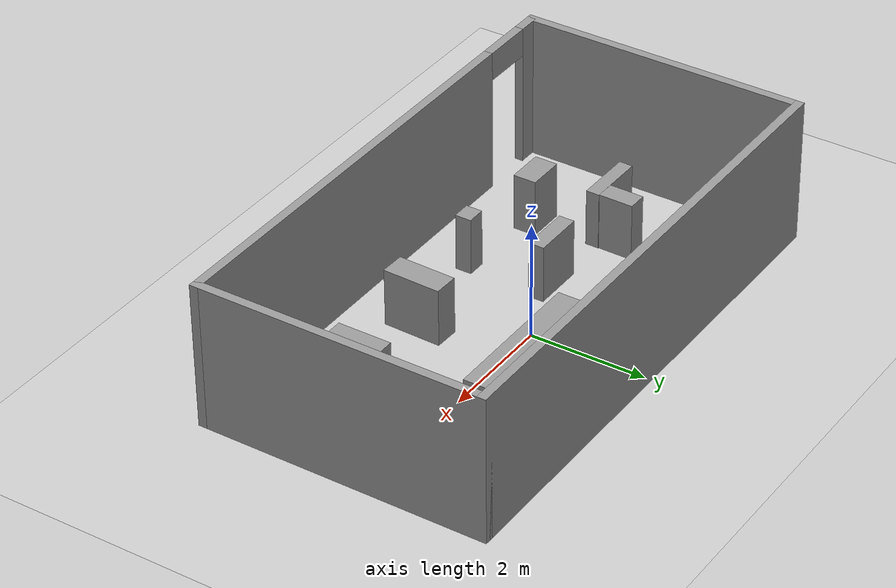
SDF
<sdf version="1.7">
 <world name="default">
  <light name="sun" type="directional">
   <pose>0 0 10 0 -0 0</pose>
   <diffuse>0.8 0.8 0.8 1</diffuse>
   <specular>0.2 0.2 0.2 1</specular>
   <attenuation>
    <range>1000</range>
    <constant>0.9</constant>
    <linear>0.01</linear>
    <quadratic>0.001</quadratic>
   </attenuation>
   <direction>-0.5 0.1 -0.9</direction>
   <spot><inner_angle>0</inner_angle><outer_angle>0</outer_angle><falloff>0</falloff></spot>
  </light>
  <model name="ground_plane">
   <static>1</static>
   <link name="link">
    <collision name="collision">
     <geometry><plane><normal>0 0 1</normal><size>100 100</size></plane></geometry>
     <surface>
      <contact><collide_bitmask>65535</collide_bitmask></contact>
      <friction><ode><mu>100</mu><mu2>50</mu2></ode></friction>
     </surface>
    </collision>
    <visual name="visual">
     <cast_shadows>0</cast_shadows>
     <geometry><plane><normal>0 0 1</normal><size>100 100</size></plane></geometry>
     <material>
      <script><uri>file://media/materials/scripts/gazebo.material</uri><name>Gazebo/Grey</name></script>
     </material>
    </visual>
   </link>
  </model>
  <gravity>0 0 -9.8</gravity>
  <magnetic_field>6e-06 2.3e-05 -4.2e-05</magnetic_field>
  <atmosphere type="adiabatic"/>
  <physics type="ode">
   <max_step_size>0.001</max_step_size>
   <real_time_factor>1</real_time_factor>
   <real_time_update_rate>1000</real_time_update_rate>
  </physics>
  <scene><ambient>0.4 0.4 0.4 1</ambient><background>0.7 0.7 0.7 1</background><shadows>1</shadows></scene>
  <spherical_coordinates>
   <surface_model>EARTH_WGS84</surface_model>
   <latitude_deg>0</latitude_deg>
   <longitude_deg>0</longitude_deg>
   <elevation>0</elevation>
   <heading_deg>0</heading_deg>
  </spherical_coordinates>
  <model name="house_8_13">
   <pose>-0.000757 -0.010216 0 0 -0 0</pose>
   <link name="Wall_0">
    <collision name="Wall_0_Collision">
     <geometry><box><size>9 0.15 2.5</size></box></geometry>
     <pose>0 0 1.25 0 -0 0</pose>
    </collision>
    <visual name="Wall_0_Visual">
     <pose>0 0 1.25 0 -0 0</pose>
     <geometry><box><size>9 0.15 2.5</size></box></geometry>
     <material>
      <script><uri>file://media/materials/scripts/gazebo.material</uri><name>Gazebo/Grey</name></script>
      <ambient>1 1 1 1</ambient>
     </material>
     <meta><layer>0</layer></meta>
    </visual>
    <pose>-0 2.0525 0 0 -0 0</pose>
   </link>
   <link name="Wall_1">
    <collision name="Wall_1_Collision">
     <geometry><box><size>5 0.15 2.5</size></box></geometry>
     <pose>0 0 1.25 0 -0 0</pose>
    </collision>
    <visual name="Wall_1_Visual">
     <pose>0 0 1.25 0 -0 0</pose>
     <geometry><box><size>5 0.15 2.5</size></box></geometry>
     <material>
      <script><uri>file://media/materials/scripts/gazebo.material</uri><name>Gazebo/Grey</name></script>
      <ambient>1 1 1 1</ambient>
     </material>
     <meta><layer>0</layer></meta>
    </visual>
    <pose>4.425 -0.3725 0 0 -0 -1.5708</pose>
   </link>
   <link name="Wall_2">
    <pose>-0 -2.7975 0 0 -0 3.14159</pose>
    <visual name="Wall_2_Visual_0">
     <pose>-0.6775 0 1.25 0 -0 0</pose>
     <geometry><box><size>7.645 0.15 2.5</size></box></geometry>
     <material>
      <script><uri>file://media/materials/scripts/gazebo.material</uri><name>Gazebo/Grey</name></script>
      <ambient>1 1 1 1</ambient>
     </material>
     <meta><layer>0</layer></meta>
    </visual>
    <collision name="Wall_2_Collision_0">
     <geometry><box><size>7.645 0.15 2.5</size></box></geometry>
     <pose>-0.6775 0 1.25 0 -0 0</pose>
    </collision>
    <visual name="Wall_2_Visual_1">
     <pose>4.2725 0 1.25 0 -0 0</pose>
     <geometry><box><size>0.455 0.15 2.5</size></box></geometry>
     <material>
      <script><uri>file://media/materials/scripts/gazebo.material</uri><name>Gazebo/Grey</name></script>
      <ambient>1 1 1 1</ambient>
     </material>
     <meta><layer>0</layer></meta>
    </visual>
    <collision name="Wall_2_Collision_1">
     <geometry><box><size>0.455 0.15 2.5</size></box></geometry>
     <pose>4.2725 0 1.25 0 -0 0</pose>
    </collision>
    <visual name="Wall_2_Visual_2">
     <pose>3.595 0 2.25 0 -0 0</pose>
     <geometry><box><size>0.9 0.15 0.5</size></box></geometry>
     <material>
      <script><uri>file://media/materials/scripts/gazebo.material</uri><name>Gazebo/Grey</name></script>
      <ambient>1 1 1 1</ambient>
     </material>
     <meta><layer>0</layer></meta>
    </visual>
    <collision name="Wall_2_Collision_2">
     <geometry><box><size>0.9 0.15 0.5</size></box></geometry>
     <pose>3.595 0 2.25 0 -0 0</pose>
    </collision>
   </link>
   <link name="Wall_3">
    <collision name="Wall_3_Collision">
     <geometry><box><size>5 0.15 2.5</size></box></geometry>
     <pose>0 0 1.25 0 -0 0</pose>
    </collision>
    <visual name="Wall_3_Visual">
     <pose>0 0 1.25 0 -0 0</pose>
     <geometry><box><size>5 0.15 2.5</size></box></geometry>
     <material>
      <script><uri>file://media/materials/scripts/gazebo.material</uri><name>Gazebo/Grey</name></script>
      <ambient>1 1 1 1</ambient>
     </material>
     <meta><layer>0</layer></meta>
    </visual>
    <pose>-4.425 -0.3725 0 0 -0 1.5708</pose>
   </link>
   <static>1</static>
  </model>
  <model name="unit_box">
   <pose>1.31193 1.20542 0.5 0 -0 9e-06</pose>
   <link name="link">
    <inertial>
     <mass>1</mass>
     <inertia>
      <ixx>0.166667</ixx>
      <ixy>0</ixy>
      <ixz>0</ixz>
      <iyy>0.166667</iyy>
      <iyz>0</iyz>
      <izz>0.166667</izz>
     </inertia>
    </inertial>
    <collision name="collision"><geometry><box><size>2.57913 1.42997 1</size></box></geometry></collision>
    <visual name="visual">
     <geometry><box><size>2.57913 1.42997 1</size></box></geometry>
     <material>
      <script><name>Gazebo/Grey</name><uri>file://media/materials/scripts/gazebo.material</uri></script>
     </material>
    </visual>
   </link>
  </model>
  <model name="mark_label1">
   <link name="link_0">
    <inertial>
     <mass>0.184018</mass>
     <inertia>
      <ixx>0.00908536</ixx>
      <ixy>0</ixy>
      <ixz>0</ixz>
      <iyy>0.011455</iyy>
      <iyz>0</iyz>
      <izz>0.00984742</izz>
     </inertia>
    </inertial>
    <visual name="visual">
     <geometry><box><size>0.048235 0.637018 0.37006</size></box></geometry>
     <material>
      <lighting>1</lighting>
      <script>
       <uri>/home/lynn/catkin_ws/src/home/models/mark_label1/materials/scripts</uri>
       <uri>/home/lynn/catkin_ws/src/home/models/mark_label1/materials/textures</uri>
       <name>Mark/image1</name>
      </script>
      <shader type="pixel"><normal_map>__default__</normal_map></shader>
      <ambient>0.3 0.3 0.3 1</ambient>
      <diffuse>0.7 0.7 0.7 1</diffuse>
      <specular>0.01 0.01 0.01 1</specular>
      <emissive>0 0 0 1</emissive>
     </material>
    </visual>
    <collision name="collision">
     <geometry><box><size>0.048235 0.637018 0.37006</size></box></geometry>
     <surface>
      <friction>
       <ode><mu>1</mu><mu2>1</mu2><fdir1>0 0 0</fdir1><slip1>0</slip1><slip2>0</slip2></ode>
       <torsional>
        <coefficient>1</coefficient>
        <patch_radius>0</patch_radius>
        <surface_radius>0</surface_radius>
        <use_patch_radius>1</use_patch_radius>
        <ode><slip>0</slip></ode>
       </torsional>
      </friction>
      <bounce><restitution_coefficient>0</restitution_coefficient><threshold>1e+06</threshold></bounce>
      <contact>
       <collide_without_contact>0</collide_without_contact>
       <collide_without_contact_bitmask>1</collide_without_contact_bitmask>
       <collide_bitmask>1</collide_bitmask>
       <ode>
        <soft_cfm>0</soft_cfm>
        <soft_erp>0.2</soft_erp>
        <kp>1e+13</kp>
        <kd>1</kd>
        <max_vel>0.01</max_vel>
        <min_depth>0</min_depth>
       </ode>
       <bullet>
        <split_impulse>1</split_impulse>
        <split_impulse_penetration_threshold>-0.01</split_impulse_penetration_threshold>
        <soft_cfm>0</soft_cfm>
        <soft_erp>0.2</soft_erp>
        <kp>1e+13</kp>
        <kd>1</kd>
       </bullet>
      </contact>
     </surface>
    </collision>
   </link>
   <static>0</static>
   <pose>-0.047759 1.23117 0.185029 4e-06 -0 0.007292</pose>
  </model>
  <model name="mark_label2">
   <link name="link_0">
    <inertial>
     <mass>0.184018</mass>
     <inertia>
      <ixx>0.00908536</ixx>
      <ixy>0</ixy>
      <ixz>0</ixz>
      <iyy>0.011455</iyy>
      <iyz>0</iyz>
      <izz>0.00984742</izz>
     </inertia>
    </inertial>
    <visual name="visual">
     <geometry><box><size>0.600889 0.041552 0.375871</size></box></geometry>
     <material>
      <lighting>1</lighting>
      <script>
       <uri>/home/lynn/catkin_ws/src/home/models/mark_label2/materials/scripts</uri>
       <uri>/home/lynn/catkin_ws/src/home/models/mark_label2/materials/textures</uri>
       <name>Mark/image2</name>
      </script>
      <shader type="pixel"><normal_map>__default__</normal_map></shader>
      <ambient>0.3 0.3 0.3 1</ambient>
      <diffuse>0.7 0.7 0.7 1</diffuse>
      <specular>0.01 0.01 0.01 1</specular>
      <emissive>0 0 0 1</emissive>
     </material>
    </visual>
    <collision name="collision">
     <geometry><box><size>0.600889 0.041552 0.375871</size></box></geometry>
     <surface>
      <friction>
       <ode><mu>1</mu><mu2>1</mu2><fdir1>0 0 0</fdir1><slip1>0</slip1><slip2>0</slip2></ode>
       <torsional>
        <coefficient>1</coefficient>
        <patch_radius>0</patch_radius>
        <surface_radius>0</surface_radius>
        <use_patch_radius>1</use_patch_radius>
        <ode><slip>0</slip></ode>
       </torsional>
      </friction>
      <bounce><restitution_coefficient>0</restitution_coefficient><threshold>1e+06</threshold></bounce>
      <contact>
       <collide_without_contact>0</collide_without_contact>
       <collide_without_contact_bitmask>1</collide_without_contact_bitmask>
       <collide_bitmask>1</collide_bitmask>
       <ode>
        <soft_cfm>0</soft_cfm>
        <soft_erp>0.2</soft_erp>
        <kp>1e+13</kp>
        <kd>1</kd>
        <max_vel>0.01</max_vel>
        <min_depth>0</min_depth>
       </ode>
       <bullet>
        <split_impulse>1</split_impulse>
        <split_impulse_penetration_threshold>-0.01</split_impulse_penetration_threshold>
        <soft_cfm>0</soft_cfm>
        <soft_erp>0.2</soft_erp>
        <kp>1e+13</kp>
        <kd>1</kd>
       </bullet>
      </contact>
     </surface>
    </collision>
   </link>
   <static>0</static>
   <pose>-1.10381 1.90948 0.187931 4e-06 -1.6e-05 -0.000344</pose>
  </model>
  <model name="mark_label3">
   <link name="link_0">
    <inertial>
     <mass>0.184018</mass>
     <inertia>
      <ixx>0.00908536</ixx>
      <ixy>0</ixy>
      <ixz>0</ixz>
      <iyy>0.011455</iyy>
      <iyz>0</iyz>
      <izz>0.00984742</izz>
     </inertia>
    </inertial>
    <visual name="visual">
     <geometry><box><size>0.529831 0.051919 0.394191</size></box></geometry>
     <material>
      <lighting>1</lighting>
      <script>
       <uri>/home/j/catkin_ws/src/home/models/mark_label3/materials/scripts</uri>
       <uri>/home/j/catkin_ws/src/home/models/mark_label3/materials/textures</uri>
       <name>Mark/image3</name>
      </script>
      <shader type="pixel"><normal_map>__default__</normal_map></shader>
      <ambient>0.3 0.3 0.3 1</ambient>
      <diffuse>0.7 0.7 0.7 1</diffuse>
      <specular>0.01 0.01 0.01 1</specular>
      <emissive>0 0 0 1</emissive>
     </material>
    </visual>
    <collision name="collision">
     <geometry><box><size>0.529831 0.051919 0.394191</size></box></geometry>
     <surface>
      <friction>
       <ode><mu>1</mu><mu2>1</mu2><fdir1>0 0 0</fdir1><slip1>0</slip1><slip2>0</slip2></ode>
       <torsional>
        <coefficient>1</coefficient>
        <patch_radius>0</patch_radius>
        <surface_radius>0</surface_radius>
        <use_patch_radius>1</use_patch_radius>
        <ode><slip>0</slip></ode>
       </torsional>
      </friction>
      <bounce><restitution_coefficient>0</restitution_coefficient><threshold>1e+06</threshold></bounce>
      <contact>
       <collide_without_contact>0</collide_without_contact>
       <collide_without_contact_bitmask>1</collide_without_contact_bitmask>
       <collide_bitmask>1</collide_bitmask>
       <ode>
        <soft_cfm>0</soft_cfm>
        <soft_erp>0.2</soft_erp>
        <kp>1e+13</kp>
        <kd>1</kd>
        <max_vel>0.01</max_vel>
        <min_depth>0</min_depth>
       </ode>
       <bullet>
        <split_impulse>1</split_impulse>
        <split_impulse_penetration_threshold>-0.01</split_impulse_penetration_threshold>
        <soft_cfm>0</soft_cfm>
        <soft_erp>0.2</soft_erp>
        <kp>1e+13</kp>
        <kd>1</kd>
       </bullet>
      </contact>
     </surface>
    </collision>
   </link>
   <static>0</static>
   <pose>1.32426 0.455473 0.197096 1e-06 0 -0.010356</pose>
  </model>
  <model name="mark_label4">
   <link name="link_0">
    <inertial>
     <mass>0.184018</mass>
     <inertia>
      <ixx>0.00908536</ixx>
      <ixy>0</ixy>
      <ixz>0</ixz>
      <iyy>0.011455</iyy>
      <iyz>0</iyz>
      <izz>0.00984742</izz>
     </inertia>
    </inertial>
    <visual name="visual">
     <geometry><box><size>0.019503 0.571355 0.316739</size></box></geometry>
     <material>
      <lighting>1</lighting>
      <script>
       <uri>/home/lynn/catkin_ws/src/home/models/mark_label4/materials/scripts</uri>
       <uri>/home/lynn/catkin_ws/src/home/models/mark_label4/materials/textures</uri>
       <name>Mark/image4</name>
      </script>
      <shader type="pixel"><normal_map>__default__</normal_map></shader>
      <ambient>0.3 0.3 0.3 1</ambient>
      <diffuse>0.7 0.7 0.7 1</diffuse>
      <specular>0.01 0.01 0.01 1</specular>
      <emissive>0 0 0 1</emissive>
     </material>
    </visual>
    <collision name="collision">
     <geometry><box><size>0.019503 0.571355 0.316739</size></box></geometry>
     <surface>
      <friction>
       <ode><mu>1</mu><mu2>1</mu2><fdir1>0 0 0</fdir1><slip1>0</slip1><slip2>0</slip2></ode>
       <torsional>
        <coefficient>1</coefficient>
        <patch_radius>0</patch_radius>
        <surface_radius>0</surface_radius>
        <use_patch_radius>1</use_patch_radius>
        <ode><slip>0</slip></ode>
       </torsional>
      </friction>
      <bounce><restitution_coefficient>0</restitution_coefficient><threshold>1e+06</threshold></bounce>
      <contact>
       <collide_without_contact>0</collide_without_contact>
       <collide_without_contact_bitmask>1</collide_without_contact_bitmask>
       <collide_bitmask>1</collide_bitmask>
       <ode>
        <soft_cfm>0</soft_cfm>
        <soft_erp>0.2</soft_erp>
        <kp>1e+13</kp>
        <kd>1</kd>
        <max_vel>0.01</max_vel>
        <min_depth>0</min_depth>
       </ode>
       <bullet>
        <split_impulse>1</split_impulse>
        <split_impulse_penetration_threshold>-0.01</split_impulse_penetration_threshold>
        <soft_cfm>0</soft_cfm>
        <soft_erp>0.2</soft_erp>
        <kp>1e+13</kp>
        <kd>1</kd>
       </bullet>
      </contact>
     </surface>
    </collision>
   </link>
   <static>0</static>
   <pose>2.66791 1.16969 0.158369 0 -3e-06 -5.8e-05</pose>
  </model>
  <model name="mark_label5">
   <link name="link_0">
    <inertial>
     <mass>0.184018</mass>
     <inertia>
      <ixx>0.00908536</ixx>
      <ixy>0</ixy>
      <ixz>0</ixz>
      <iyy>0.011455</iyy>
      <iyz>0</iyz>
      <izz>0.00984742</izz>
     </inertia>
    </inertial>
    <visual name="visual">
     <geometry><box><size>0.038013 0.601343 0.365271</size></box></geometry>
     <material>
      <lighting>1</lighting>
      <script>
       <uri>/home/lynn/catkin_ws/src/home/models/mark_label5/materials/scripts</uri>
       <uri>/home/lynn/catkin_ws/src/home/models/mark_label5/materials/textures</uri>
       <name>Mark/image5</name>
      </script>
      <shader type="pixel"><normal_map>__default__</normal_map></shader>
      <ambient>0.3 0.3 0.3 1</ambient>
      <diffuse>0.7 0.7 0.7 1</diffuse>
      <specular>0.01 0.01 0.01 1</specular>
      <emissive>0 0 0 1</emissive>
     </material>
    </visual>
    <collision name="collision">
     <geometry><box><size>0.038013 0.601343 0.365271</size></box></geometry>
     <surface>
      <friction>
       <ode><mu>1</mu><mu2>1</mu2><fdir1>0 0 0</fdir1><slip1>0</slip1><slip2>0</slip2></ode>
       <torsional>
        <coefficient>1</coefficient>
        <patch_radius>0</patch_radius>
        <surface_radius>0</surface_radius>
        <use_patch_radius>1</use_patch_radius>
        <ode><slip>0</slip></ode>
       </torsional>
      </friction>
      <bounce><restitution_coefficient>0</restitution_coefficient><threshold>1e+06</threshold></bounce>
      <contact>
       <collide_without_contact>0</collide_without_contact>
       <collide_without_contact_bitmask>1</collide_without_contact_bitmask>
       <collide_bitmask>1</collide_bitmask>
       <ode>
        <soft_cfm>0</soft_cfm>
        <soft_erp>0.2</soft_erp>
        <kp>1e+13</kp>
        <kd>1</kd>
        <max_vel>0.01</max_vel>
        <min_depth>0</min_depth>
       </ode>
       <bullet>
        <split_impulse>1</split_impulse>
        <split_impulse_penetration_threshold>-0.01</split_impulse_penetration_threshold>
        <soft_cfm>0</soft_cfm>
        <soft_erp>0.2</soft_erp>
        <kp>1e+13</kp>
        <kd>1</kd>
       </bullet>
      </contact>
     </surface>
    </collision>
   </link>
   <static>0</static>
   <pose>4.33024 1.10764 0.182636 -0 -0 -4e-06</pose>
  </model>
  <model name="mark_label6">
   <link name="link_0">
    <inertial>
     <mass>0.184018</mass>
     <inertia>
      <ixx>0.00908536</ixx>
      <ixy>0</ixy>
      <ixz>0</ixz>
      <iyy>0.011455</iyy>
      <iyz>0</iyz>
      <izz>0.00984742</izz>
     </inertia>
    </inertial>
    <visual name="visual">
     <geometry><box><size>0.00233 0.549026 0.382441</size></box></geometry>
     <material>
      <lighting>1</lighting>
      <script>
       <uri>/home/lynn/catkin_ws/src/home/models/mark_label6/materials/scripts</uri>
       <uri>/home/lynn/catkin_ws/src/home/models/mark_label6/materials/textures</uri>
       <name>Mark/image6</name>
      </script>
      <shader type="pixel"><normal_map>__default__</normal_map></shader>
      <ambient>0.3 0.3 0.3 1</ambient>
      <diffuse>0.7 0.7 0.7 1</diffuse>
      <specular>0.01 0.01 0.01 1</specular>
      <emissive>0 0 0 1</emissive>
     </material>
    </visual>
    <collision name="collision">
     <geometry><box><size>0.00233 0.549026 0.382441</size></box></geometry>
     <surface>
      <friction>
       <ode><mu>1</mu><mu2>1</mu2><fdir1>0 0 0</fdir1><slip1>0</slip1><slip2>0</slip2></ode>
       <torsional>
        <coefficient>1</coefficient>
        <patch_radius>0</patch_radius>
        <surface_radius>0</surface_radius>
        <use_patch_radius>1</use_patch_radius>
        <ode><slip>0</slip></ode>
       </torsional>
      </friction>
      <bounce><restitution_coefficient>0</restitution_coefficient><threshold>1e+06</threshold></bounce>
      <contact>
       <collide_without_contact>0</collide_without_contact>
       <collide_without_contact_bitmask>1</collide_without_contact_bitmask>
       <collide_bitmask>1</collide_bitmask>
       <ode>
        <soft_cfm>0</soft_cfm>
        <soft_erp>0.2</soft_erp>
        <kp>1e+13</kp>
        <kd>1</kd>
        <max_vel>0.01</max_vel>
        <min_depth>0</min_depth>
       </ode>
       <bullet>
        <split_impulse>1</split_impulse>
        <split_impulse_penetration_threshold>-0.01</split_impulse_penetration_threshold>
        <soft_cfm>0</soft_cfm>
        <soft_erp>0.2</soft_erp>
        <kp>1e+13</kp>
        <kd>1</kd>
       </bullet>
      </contact>
     </surface>
    </collision>
   </link>
   <static>0</static>
   <pose>4.25101 -1.59499 0.191216 1.7e-05 -6.2e-05 -4e-06</pose>
  </model>
  <model name="unit_box_0">
   <pose>-2.63185 -1.59438 0.5 0 -0 -0.00064</pose>
   <link name="link">
    <inertial>
     <mass>1</mass>
     <inertia>
      <ixx>0.166667</ixx>
      <ixy>0</ixy>
      <ixz>0</ixz>
      <iyy>0.166667</iyy>
      <iyz>0</iyz>
      <izz>0.166667</izz>
     </inertia>
    </inertial>
    <collision name="collision"><geometry><box><size>0.643269 0.401831 1</size></box></geometry></collision>
    <visual name="visual">
     <geometry><box><size>0.643269 0.401831 1</size></box></geometry>
     <material>
      <script><name>Gazebo/Grey</name><uri>file://media/materials/scripts/gazebo.material</uri></script>
     </material>
    </visual>
   </link>
  </model>
  <model name="unit_box_2">
   <pose>-3.04563 -0.480052 0.499998 0 4e-06 -0.008531</pose>
   <link name="link">
    <inertial>
     <mass>1</mass>
     <inertia>
      <ixx>0.166667</ixx>
      <ixy>0</ixy>
      <ixz>0</ixz>
      <iyy>0.166667</iyy>
      <iyz>0</iyz>
      <izz>0.166667</izz>
     </inertia>
    </inertial>
    <collision name="collision"><geometry><box><size>1 0.231557 1</size></box></geometry></collision>
    <visual name="visual">
     <geometry><box><size>1 0.231557 1</size></box></geometry>
     <material>
      <script><name>Gazebo/Grey</name><uri>file://media/materials/scripts/gazebo.material</uri></script>
     </material>
    </visual>
   </link>
  </model>
  <model name="unit_box_3">
   <pose>-2.71871 -0.068372 0.5 0 -0 -0.010008</pose>
   <link name="link">
    <inertial>
     <mass>1</mass>
     <inertia>
      <ixx>0.166667</ixx>
      <ixy>0</ixy>
      <ixz>0</ixz>
      <iyy>0.166667</iyy>
      <iyz>0</iyz>
      <izz>0.166667</izz>
     </inertia>
    </inertial>
    <collision name="collision"><geometry><box><size>0.330802 0.596679 1</size></box></geometry></collision>
    <visual name="visual">
     <geometry><box><size>0.330802 0.596679 1</size></box></geometry>
     <material>
      <script><name>Gazebo/Grey</name><uri>file://media/materials/scripts/gazebo.material</uri></script>
     </material>
    </visual>
   </link>
  </model>
  <model name="unit_box_4">
   <pose>-1.28284 -0.448065 0.5 0 0 -0.00225</pose>
   <link name="link">
    <inertial>
     <mass>1</mass>
     <inertia>
      <ixx>0.166667</ixx>
      <ixy>0</ixy>
      <ixz>0</ixz>
      <iyy>0.166667</iyy>
      <iyz>0</iyz>
      <izz>0.166667</izz>
     </inertia>
    </inertial>
    <collision name="collision"><geometry><box><size>0.88339 0.267877 1</size></box></geometry></collision>
    <visual name="visual">
     <geometry><box><size>0.88339 0.267877 1</size></box></geometry>
     <material>
      <script><name>Gazebo/Grey</name><uri>file://media/materials/scripts/gazebo.material</uri></script>
     </material>
    </visual>
   </link>
  </model>
  <model name="unit_box_7">
   <pose>2.55862 -1.35137 0.500001 2e-06 1e-06 1e-06</pose>
   <link name="link">
    <inertial>
     <mass>1</mass>
     <inertia>
      <ixx>0.166667</ixx>
      <ixy>0</ixy>
      <ixz>0</ixz>
      <iyy>0.166667</iyy>
      <iyz>0</iyz>
      <izz>0.166667</izz>
     </inertia>
    </inertial>
    <collision name="collision"><geometry><box><size>0.26567 0.927895 1</size></box></geometry></collision>
    <visual name="visual">
     <geometry><box><size>0.26567 0.927895 1</size></box></geometry>
     <material>
      <script><name>Gazebo/Grey</name><uri>file://media/materials/scripts/gazebo.material</uri></script>
     </material>
    </visual>
   </link>
  </model>
  <model name="unit_box_9">
   <pose>-3.11011 1.09895 0.500001 1e-06 2e-06 0</pose>
   <link name="link">
    <inertial>
     <mass>1</mass>
     <inertia>
      <ixx>0.166667</ixx>
      <ixy>0</ixy>
      <ixz>0</ixz>
      <iyy>0.166667</iyy>
      <iyz>0</iyz>
      <izz>0.166667</izz>
     </inertia>
    </inertial>
    <collision name="collision"><geometry><box><size>1 0.260422 1</size></box></geometry></collision>
    <visual name="visual">
     <geometry><box><size>1 0.260422 1</size></box></geometry>
     <material>
      <script><name>Gazebo/Grey</name><uri>file://media/materials/scripts/gazebo.material</uri></script>
     </material>
    </visual>
   </link>
  </model>
  <model name="unit_box_11">
   <pose>-1.03112 -1.80191 0.5 1e-06 1e-06 -0.001866</pose>
   <link name="link">
    <inertial>
     <mass>1</mass>
     <inertia>
      <ixx>0.166667</ixx>
      <ixy>0</ixy>
      <ixz>0</ixz>
      <iyy>0.166667</iyy>
      <iyz>0</iyz>
      <izz>0.166667</izz>
     </inertia>
    </inertial>
    <collision name="collision"><geometry><box><size>0.319711 0.280098 1</size></box></geometry></collision>
    <visual name="visual">
     <geometry><box><size>0.319711 0.280098 1</size></box></geometry>
     <material>
      <script><name>Gazebo/Grey</name><uri>file://media/materials/scripts/gazebo.material</uri></script>
     </material>
    </visual>
   </link>
  </model>
  <light name="user_point_light_0" type="point">
   <pose>-2.33435 -0.689464 1 0 -0 0</pose>
   <diffuse>0.5 0.5 0.5 1</diffuse>
   <specular>0.1 0.1 0.1 1</specular>
   <attenuation>
    <range>20</range>
    <constant>0.5</constant>
    <linear>0.01</linear>
    <quadratic>0.001</quadratic>
   </attenuation>
   <cast_shadows>0</cast_shadows>
   <direction>0 0 -1</direction>
   <spot><inner_angle>0</inner_angle><outer_angle>0</outer_angle><falloff>0</falloff></spot>
  </light>
  <model name="unit_box_1">
   <pose>0.751978 -1.52325 0.5 0 0 -0.02632</pose>
   <link name="link">
    <inertial>
     <mass>1</mass>
     <inertia>
      <ixx>0.166667</ixx>
      <ixy>0</ixy>
      <ixz>0</ixz>
      <iyy>0.166667</iyy>
      <iyz>0</iyz>
      <izz>0.166667</izz>
     </inertia>
    </inertial>
    <collision name="collision"><geometry><box><size>0.425455 1 1</size></box></geometry></collision>
    <visual name="visual">
     <geometry><box><size>0.425455 1 1</size></box></geometry>
     <material>
      <script><name>Gazebo/Grey</name><uri>file://media/materials/scripts/gazebo.material</uri></script>
     </material>
    </visual>
   </link>
  </model>
 </world>
</sdf>
